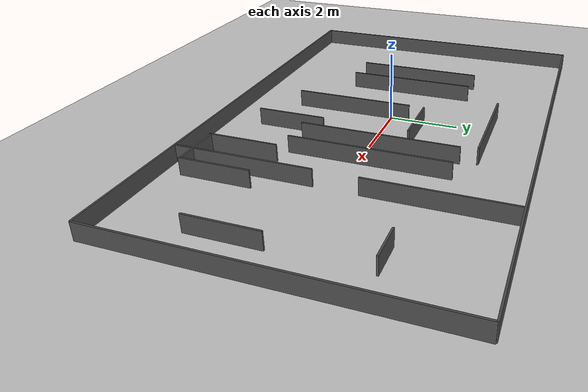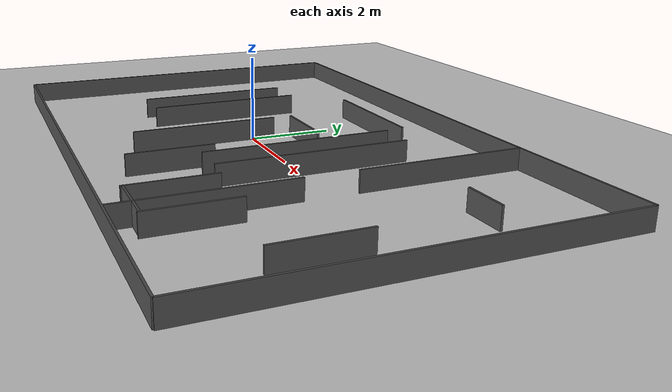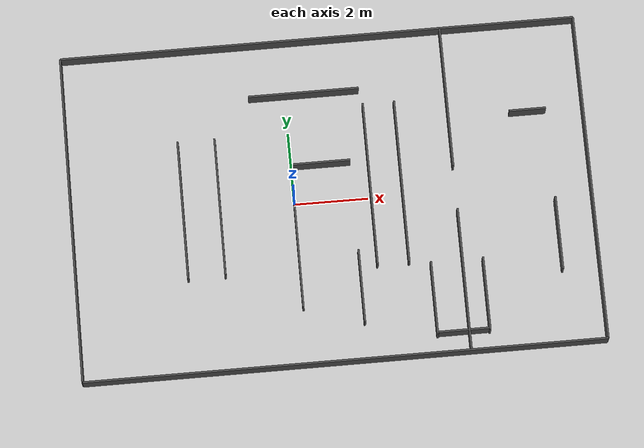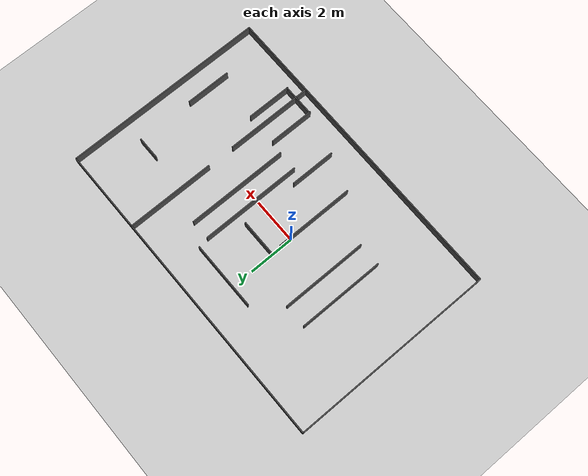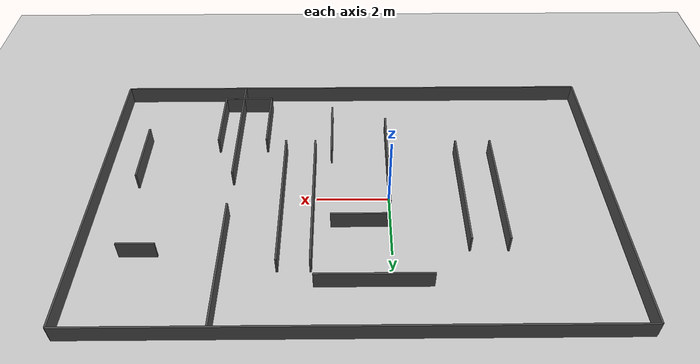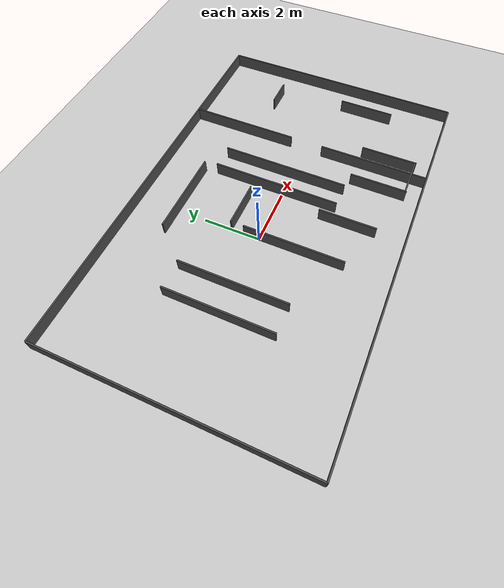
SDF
<?xml version="1.0" ?>
<sdf version="1.6">
  <world name="avoid_training_course">
    <plugin name="gazebo_ros_state" filename="libgazebo_ros_state.so">
      <update_rate>50.0</update_rate>
    </plugin>
    <include>
      <uri>model://sun</uri>
    </include>
    <include>
      <uri>model://ground_plane</uri>
    </include>
    <model name="outer_bottom">
      <static>true</static>
      <pose>1.0 -4.5 0.25 0 0 0</pose>
      <link name="link">
        <collision name="c">
          <geometry><box><size>14.0 0.05 0.5</size></box></geometry>
        </collision>
        <visual name="v">
          <geometry><box><size>14.0 0.05 0.5</size></box></geometry>
          <material>
            <ambient>0.3 0.3 0.3 1</ambient>
            <diffuse>0.3 0.3 0.3 1</diffuse>
          </material>
        </visual>
      </link>
    </model>

    <model name="outer_top">
      <static>true</static>
      <pose>1.0 4.5 0.25 0 0 0</pose>
      <link name="link">
        <collision name="c">
          <geometry><box><size>14.0 0.05 0.5</size></box></geometry>
        </collision>
        <visual name="v">
          <geometry><box><size>14.0 0.05 0.5</size></box></geometry>
          <material>
            <ambient>0.3 0.3 0.3 1</ambient>
            <diffuse>0.3 0.3 0.3 1</diffuse>
          </material>
        </visual>
      </link>
    </model>

    <model name="outer_left">
      <static>true</static>
      <pose>-6.0 0.0 0.25 0 0 0</pose>
      <link name="link">
        <collision name="c">
          <geometry><box><size>0.05 9.0 0.5</size></box></geometry>
        </collision>
        <visual name="v">
          <geometry><box><size>0.05 9.0 0.5</size></box></geometry>
          <material>
            <ambient>0.3 0.3 0.3 1</ambient>
            <diffuse>0.3 0.3 0.3 1</diffuse>
          </material>
        </visual>
      </link>
    </model>

    <model name="outer_right">
      <static>true</static>
      <pose>8.0 0.0 0.25 0 0 0</pose>
      <link name="link">
        <collision name="c">
          <geometry><box><size>0.05 9.0 0.5</size></box></geometry>
        </collision>
        <visual name="v">
          <geometry><box><size>0.05 9.0 0.5</size></box></geometry>
          <material>
            <ambient>0.3 0.3 0.3 1</ambient>
            <diffuse>0.3 0.3 0.3 1</diffuse>
          </material>
        </visual>
      </link>
    </model>

    <model name="train_a_guide_L">
      <static>true</static>
      <pose>-3.0 0.0 0.25 0 0 0</pose>
      <link name="link">
        <collision name="c">
          <geometry><box><size>0.05 3.8 0.5</size></box></geometry>
        </collision>
        <visual name="v">
          <geometry><box><size>0.05 3.8 0.5</size></box></geometry>
          <material>
            <ambient>0.3 0.3 0.3 1</ambient>
            <diffuse>0.3 0.3 0.3 1</diffuse>
          </material>
        </visual>
      </link>
    </model>

    <model name="train_a_guide_R">
      <static>true</static>
      <pose>-2.0 0.0 0.25 0 0 0</pose>
      <link name="link">
        <collision name="c">
          <geometry><box><size>0.05 3.8 0.5</size></box></geometry>
        </collision>
        <visual name="v">
          <geometry><box><size>0.05 3.8 0.5</size></box></geometry>
          <material>
            <ambient>0.3 0.3 0.3 1</ambient>
            <diffuse>0.3 0.3 0.3 1</diffuse>
          </material>
        </visual>
      </link>
    </model>

    <model name="mid_bend_1">
      <static>true</static>
      <pose>0.0 -1.2 0.25 0 0 0</pose>
      <link name="link">
        <collision name="c">
          <geometry><box><size>0.05 3.5 0.5</size></box></geometry>
        </collision>
        <visual name="v">
          <geometry><box><size>0.05 3.5 0.5</size></box></geometry>
          <material>
            <ambient>0.3 0.3 0.3 1</ambient>
            <diffuse>0.3 0.3 0.3 1</diffuse>
          </material>
        </visual>
      </link>
    </model>

    <model name="mid_bend_2">
      <static>true</static>
      <pose>0.8 1.0 0.25 0 0 0</pose>
      <link name="link">
        <collision name="c">
          <geometry><box><size>1.6 0.05 0.5</size></box></geometry>
        </collision>
        <visual name="v">
          <geometry><box><size>1.6 0.05 0.5</size></box></geometry>
          <material>
            <ambient>0.3 0.3 0.3 1</ambient>
            <diffuse>0.3 0.3 0.3 1</diffuse>
          </material>
        </visual>
      </link>
    </model>

    <model name="mid_bend_3">
      <static>true</static>
      <pose>1.6 -2.5 0.25 0 0 0</pose>
      <link name="link">
        <collision name="c">
          <geometry><box><size>0.05 2.0 0.5</size></box></geometry>
        </collision>
        <visual name="v">
          <geometry><box><size>0.05 2.0 0.5</size></box></geometry>
          <material>
            <ambient>0.3 0.3 0.3 1</ambient>
            <diffuse>0.3 0.3 0.3 1</diffuse>
          </material>
        </visual>
      </link>
    </model>

    <model name="narrow_L">
      <static>true</static>
      <pose>2.075 0.3 0.25 0 0 0</pose>
      <link name="link">
        <collision name="c">
          <geometry><box><size>0.05 4.5 0.5</size></box></geometry>
        </collision>
        <visual name="v">
          <geometry><box><size>0.05 4.5 0.5</size></box></geometry>
          <material>
            <ambient>0.3 0.3 0.3 1</ambient>
            <diffuse>0.3 0.3 0.3 1</diffuse>
          </material>
        </visual>
      </link>
    </model>

    <model name="narrow_R">
      <static>true</static>
      <pose>2.925 0.3 0.25 0 0 0</pose>
      <link name="link">
        <collision name="c">
          <geometry><box><size>0.05 4.5 0.5</size></box></geometry>
        </collision>
        <visual name="v">
          <geometry><box><size>0.05 4.5 0.5</size></box></geometry>
          <material>
            <ambient>0.3 0.3 0.3 1</ambient>
            <diffuse>0.3 0.3 0.3 1</diffuse>
          </material>
        </visual>
      </link>
    </model>

    <model name="dead_L">
      <static>true</static>
      <pose>3.5 -3.0 0.25 0 0 0</pose>
      <link name="link">
        <collision name="c">
          <geometry><box><size>0.05 2.0 0.5</size></box></geometry>
        </collision>
        <visual name="v">
          <geometry><box><size>0.05 2.0 0.5</size></box></geometry>
          <material>
            <ambient>0.3 0.3 0.3 1</ambient>
            <diffuse>0.3 0.3 0.3 1</diffuse>
          </material>
        </visual>
      </link>
    </model>

    <model name="dead_back">
      <static>true</static>
      <pose>4.2 -3.95 0.25 0 0 0</pose>
      <link name="link">
        <collision name="c">
          <geometry><box><size>1.4 0.05 0.5</size></box></geometry>
        </collision>
        <visual name="v">
          <geometry><box><size>1.4 0.05 0.5</size></box></geometry>
          <material>
            <ambient>0.3 0.3 0.3 1</ambient>
            <diffuse>0.3 0.3 0.3 1</diffuse>
          </material>
        </visual>
      </link>
    </model>

    <model name="dead_R">
      <static>true</static>
      <pose>4.9 -3.0 0.25 0 0 0</pose>
      <link name="link">
        <collision name="c">
          <geometry><box><size>0.05 2.0 0.5</size></box></geometry>
        </collision>
        <visual name="v">
          <geometry><box><size>0.05 2.0 0.5</size></box></geometry>
          <material>
            <ambient>0.3 0.3 0.3 1</ambient>
            <diffuse>0.3 0.3 0.3 1</diffuse>
          </material>
        </visual>
      </link>
    </model>

    <model name="junction_1">
      <static>true</static>
      <pose>0.5 3.0 0.25 0 0 0</pose>
      <link name="link">
        <collision name="c">
          <geometry><box><size>3.0 0.05 0.5</size></box></geometry>
        </collision>
        <visual name="v">
          <geometry><box><size>3.0 0.05 0.5</size></box></geometry>
          <material>
            <ambient>0.3 0.3 0.3 1</ambient>
            <diffuse>0.3 0.3 0.3 1</diffuse>
          </material>
        </visual>
      </link>
    </model>

    <model name="div_lo">
      <static>true</static>
      <pose>4.35 -2.55 0.25 0 0 0</pose>
      <link name="link">
        <collision name="c">
          <geometry><box><size>0.05 3.9 0.5</size></box></geometry>
        </collision>
        <visual name="v">
          <geometry><box><size>0.05 3.9 0.5</size></box></geometry>
          <material>
            <ambient>0.3 0.3 0.3 1</ambient>
            <diffuse>0.3 0.3 0.3 1</diffuse>
          </material>
        </visual>
      </link>
    </model>

    <model name="div_hi">
      <static>true</static>
      <pose>4.35 2.55 0.25 0 0 0</pose>
      <link name="link">
        <collision name="c">
          <geometry><box><size>0.05 3.9 0.5</size></box></geometry>
        </collision>
        <visual name="v">
          <geometry><box><size>0.05 3.9 0.5</size></box></geometry>
          <material>
            <ambient>0.3 0.3 0.3 1</ambient>
            <diffuse>0.3 0.3 0.3 1</diffuse>
          </material>
        </visual>
      </link>
    </model>

    <model name="test_obs1">
      <static>true</static>
      <pose>6.5 2.0 0.25 0 0 0</pose>
      <link name="link">
        <collision name="c">
          <geometry><box><size>1.0 0.05 0.5</size></box></geometry>
        </collision>
        <visual name="v">
          <geometry><box><size>1.0 0.05 0.5</size></box></geometry>
          <material>
            <ambient>0.3 0.3 0.3 1</ambient>
            <diffuse>0.3 0.3 0.3 1</diffuse>
          </material>
        </visual>
      </link>
    </model>

    <model name="test_obs2">
      <static>true</static>
      <pose>7.0 -1.5 0.25 0 0 0</pose>
      <link name="link">
        <collision name="c">
          <geometry><box><size>0.05 2.0 0.5</size></box></geometry>
        </collision>
        <visual name="v">
          <geometry><box><size>0.05 2.0 0.5</size></box></geometry>
          <material>
            <ambient>0.3 0.3 0.3 1</ambient>
            <diffuse>0.3 0.3 0.3 1</diffuse>
          </material>
        </visual>
      </link>
    </model>

  </world>
</sdf>
